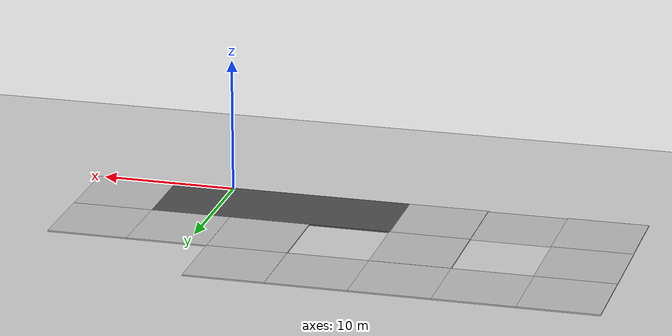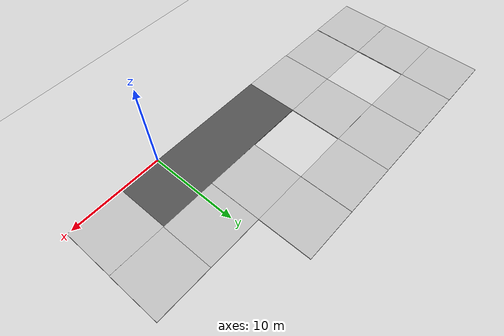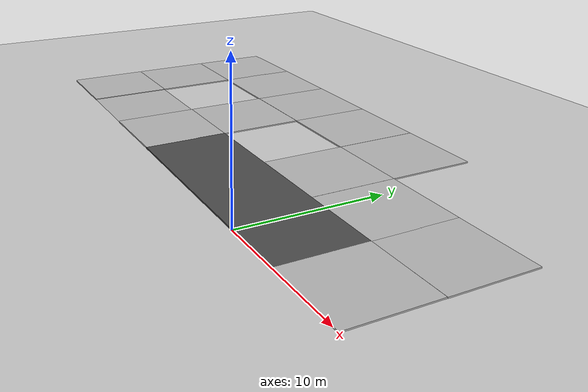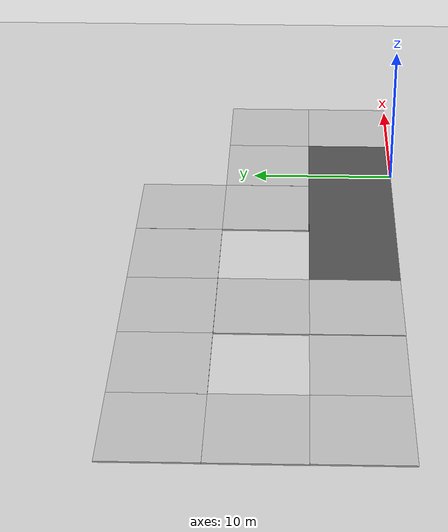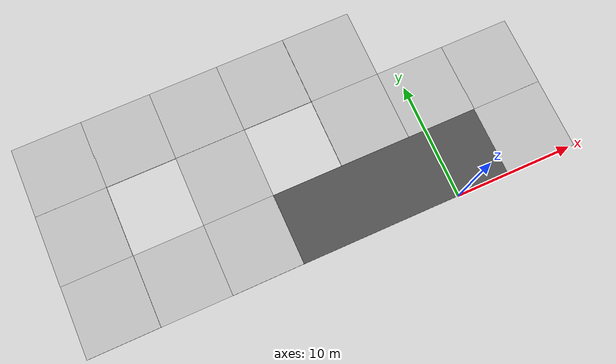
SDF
<sdf version="1.5">
 <world name="default">
  <light name="sun" type="directional">
   <cast_shadows>0</cast_shadows>
   <pose>0 0 10 0 -0 0</pose>
   <diffuse>0.8 0.8 0.8 1</diffuse>
   <specular>0.2 0.2 0.2 1</specular>
   <attenuation>
    <range>1000</range>
    <constant>0.9</constant>
    <linear>0.01</linear>
    <quadratic>0.001</quadratic>
   </attenuation>
   <direction>-0.5 0.1 -0.9</direction>
  </light>
  <model name="ground_plane">
   <static>1</static>
   <link name="link">
    <collision name="collision">
     <geometry><plane><normal>0 0 1</normal><size>100 100</size></plane></geometry>
     <surface><friction><ode><mu>100</mu><mu2>50</mu2></ode></friction></surface>
    </collision>
    <visual name="visual">
     <cast_shadows>0</cast_shadows>
     <geometry><plane><normal>0 0 1</normal><size>100 100</size></plane></geometry>
     <material>
      <script><uri>file://media/materials/scripts/gazebo.material</uri><name>Gazebo/Grey</name></script>
     </material>
    </visual>
   </link>
  </model>
  <physics type="ode">
   <real_time_update_rate>1000</real_time_update_rate>
   <ode>
    <solver>
     <type>quick</type>
     <iters>70</iters>
     <sor>1.3</sor>
     <use_dynamic_moi_rescaling>0</use_dynamic_moi_rescaling>
    </solver>
    <constraints>
     <cfm>0</cfm>
     <erp>0.2</erp>
     <contact_max_correcting_vel>100</contact_max_correcting_vel>
     <contact_surface_layer>0.001</contact_surface_layer>
    </constraints>
   </ode>
   <max_step_size>0.001</max_step_size>
   <real_time_factor>1</real_time_factor>
   <gravity>0 0 -9.8</gravity>
   <magnetic_field>5.5645e-06 2.28758e-05 -4.23884e-05</magnetic_field>
  </physics>
  <scene><ambient>0.4 0.4 0.4 1</ambient><background>0.7 0.7 0.7 1</background><shadows>1</shadows></scene>
  <spherical_coordinates>
   <surface_model>EARTH_WGS84</surface_model>
   <latitude_deg>0</latitude_deg>
   <longitude_deg>0</longitude_deg>
   <elevation>0</elevation>
   <heading_deg>0</heading_deg>
  </spherical_coordinates>
  <model name="road_plane_3">
   <static>1</static>
   <link name="link">
    <collision name="collision"><geometry><box><size>18 6 0.1</size></box></geometry></collision>
    <visual name="visual">
     <cast_shadows>0</cast_shadows>
     <geometry><box><size>18 6 0.1</size></box></geometry>
     <material>
      <script>
       <uri>model://road_plane_3/materials/scripts</uri>
       <uri>model://road_plane_3/materials/textures</uri>
       <name>vrc/road3</name>
      </script>
     </material>
    </visual>
   </link>
   <pose>-4.53361 3 0 0 -0 0</pose>
  </model>
  <model name="road_inter">
   <static>1</static>
   <link name="link">
    <collision name="collision"><geometry><box><size>6 6 0.1</size></box></geometry></collision>
    <visual name="visual">
     <cast_shadows>0</cast_shadows>
     <geometry><box><size>6 6 0.1</size></box></geometry>
     <material>
      <script>
       <uri>model://road_inter/materials/scripts</uri>
       <uri>model://road_inter/materials/textures</uri>
       <name>vrc/inter</name>
      </script>
     </material>
    </visual>
   </link>
   <pose>-16.4785 3 0 0 -0 1.57449</pose>
  </model>
  <model name="road_plane">
   <static>1</static>
   <link name="link">
    <collision name="collision"><geometry><box><size>6 6 0.1</size></box></geometry></collision>
    <visual name="visual">
     <cast_shadows>0</cast_shadows>
     <geometry><mesh><uri>model://road_plane_v2/meshes/road_plane_v2.dae</uri></mesh></geometry>
    </visual>
   </link>
   <pose>-22.4501 3 0 0 -0 0</pose>
  </model>
  <model name="road_plane_0">
   <static>1</static>
   <link name="link">
    <collision name="collision"><geometry><box><size>6 6 0.1</size></box></geometry></collision>
    <visual name="visual">
     <cast_shadows>0</cast_shadows>
     <geometry><box><size>6 6 0.1</size></box></geometry>
     <material>
      <script>
       <uri>model://road_plane/materials/scripts</uri>
       <uri>model://road_plane/materials/textures</uri>
       <name>vrc/plane</name>
      </script>
     </material>
    </visual>
   </link>
   <pose>-16.4942 8.98969 0 0 0 -1.57067</pose>
  </model>
  <model name="road_inter_0">
   <static>1</static>
   <link name="link">
    <collision name="collision"><geometry><box><size>6 6 0.1</size></box></geometry></collision>
    <visual name="visual">
     <cast_shadows>0</cast_shadows>
     <geometry><box><size>6 6 0.1</size></box></geometry>
     <material>
      <script>
       <uri>model://road_inter/materials/scripts</uri>
       <uri>model://road_inter/materials/textures</uri>
       <name>vrc/inter</name>
      </script>
     </material>
    </visual>
   </link>
   <pose>-16.4966 15 0 0 0 -1.57121</pose>
  </model>
  <model name="road_plane_1">
   <static>1</static>
   <link name="link">
    <collision name="collision"><geometry><box><size>6 6 0.1</size></box></geometry></collision>
    <visual name="visual">
     <cast_shadows>0</cast_shadows>
     <geometry><box><size>6 6 0.1</size></box></geometry>
     <material>
      <script>
       <uri>model://road_plane/materials/scripts</uri>
       <uri>model://road_plane/materials/textures</uri>
       <name>vrc/plane</name>
      </script>
     </material>
    </visual>
   </link>
   <pose>-22.4897 14.999 0 0 -0 0</pose>
  </model>
  <model name="road_plane_2">
   <static>1</static>
   <link name="link">
    <collision name="collision"><geometry><box><size>6 6 0.1</size></box></geometry></collision>
    <visual name="visual">
     <cast_shadows>0</cast_shadows>
     <geometry><box><size>6 6 0.1</size></box></geometry>
     <material>
      <script>
       <uri>model://road_plane/materials/scripts</uri>
       <uri>model://road_plane/materials/textures</uri>
       <name>vrc/plane</name>
      </script>
     </material>
    </visual>
   </link>
   <pose>-10.5068 15 0 0 -0 0</pose>
  </model>
  <model name="road_diag">
   <static>1</static>
   <link name="link">
    <collision name="collision"><geometry><box><size>6 6 0.1</size></box></geometry></collision>
    <visual name="visual">
     <cast_shadows>0</cast_shadows>
     <geometry><box><size>6 6 0.1</size></box></geometry>
     <material>
      <script>
       <uri>model://road_diag/materials/scripts</uri>
       <uri>model://road_diag/materials/textures</uri>
       <name>vrc/diag</name>
      </script>
     </material>
    </visual>
   </link>
   <pose>7.46142 3 0 0 -0 0</pose>
  </model>
  <model name="road_diag_0">
   <static>1</static>
   <link name="link">
    <collision name="collision"><geometry><box><size>6 6 0.1</size></box></geometry></collision>
    <visual name="visual">
     <cast_shadows>0</cast_shadows>
     <geometry><box><size>6 6 0.1</size></box></geometry>
     <material>
      <script>
       <uri>model://road_diag/materials/scripts</uri>
       <uri>model://road_diag/materials/textures</uri>
       <name>vrc/diag</name>
      </script>
     </material>
    </visual>
   </link>
   <pose>7.47392 9 0 0 -0 1.57232</pose>
  </model>
  <model name="road_plane_4">
   <static>1</static>
   <link name="link">
    <collision name="collision"><geometry><box><size>6 6 0.1</size></box></geometry></collision>
    <visual name="visual">
     <cast_shadows>0</cast_shadows>
     <geometry><box><size>6 6 0.1</size></box></geometry>
     <material>
      <script>
       <uri>model://road_plane/materials/scripts</uri>
       <uri>model://road_plane/materials/textures</uri>
       <name>vrc/plane</name>
      </script>
     </material>
    </visual>
   </link>
   <pose>1.50532 9 0 0 -0 0</pose>
  </model>
  <model name="road_diag_1">
   <static>1</static>
   <link name="link">
    <collision name="collision"><geometry><box><size>6 6 0.1</size></box></geometry></collision>
    <visual name="visual">
     <cast_shadows>0</cast_shadows>
     <geometry><box><size>6 6 0.1</size></box></geometry>
     <material>
      <script>
       <uri>model://road_diag/materials/scripts</uri>
       <uri>model://road_diag/materials/textures</uri>
       <name>vrc/diag</name>
      </script>
     </material>
    </visual>
   </link>
   <pose>-4.49851 9.0036 0 0 0 -1.57191</pose>
  </model>
  <model name="road_diag_2">
   <static>1</static>
   <link name="link">
    <collision name="collision"><geometry><box><size>6 6 0.1</size></box></geometry></collision>
    <visual name="visual">
     <cast_shadows>0</cast_shadows>
     <geometry><box><size>6 6 0.1</size></box></geometry>
     <material>
      <script>
       <uri>model://road_diag/materials/scripts</uri>
       <uri>model://road_diag/materials/textures</uri>
       <name>vrc/diag</name>
      </script>
     </material>
    </visual>
   </link>
   <pose>-4.49563 14.9977 0 0 -0 1.57081</pose>
  </model>
  <model name="road_diag_3">
   <static>1</static>
   <link name="link">
    <collision name="collision"><geometry><box><size>6 6 0.1</size></box></geometry></collision>
    <visual name="visual">
     <cast_shadows>0</cast_shadows>
     <geometry><box><size>6 6 0.1</size></box></geometry>
     <material>
      <script>
       <uri>model://road_diag/materials/scripts</uri>
       <uri>model://road_diag/materials/textures</uri>
       <name>vrc/diag</name>
      </script>
     </material>
    </visual>
   </link>
   <pose>-28.4361 15 0 0 0 -3.14038</pose>
  </model>
  <model name="road_diag_4">
   <static>1</static>
   <link name="link">
    <collision name="collision"><geometry><box><size>6 6 0.1</size></box></geometry></collision>
    <visual name="visual">
     <cast_shadows>0</cast_shadows>
     <geometry><box><size>6 6 0.1</size></box></geometry>
     <material>
      <script>
       <uri>model://road_diag/materials/scripts</uri>
       <uri>model://road_diag/materials/textures</uri>
       <name>vrc/diag</name>
      </script>
     </material>
    </visual>
   </link>
   <pose>-28.4086 3 0 0 0 -1.56894</pose>
  </model>
  <model name="road_plane_5">
   <static>1</static>
   <link name="link">
    <collision name="collision"><geometry><box><size>6 6 0.1</size></box></geometry></collision>
    <visual name="visual">
     <cast_shadows>0</cast_shadows>
     <geometry><box><size>6 6 0.1</size></box></geometry>
     <material>
      <script>
       <uri>model://road_plane/materials/scripts</uri>
       <uri>model://road_plane/materials/textures</uri>
       <name>vrc/plane</name>
      </script>
     </material>
    </visual>
   </link>
   <pose>-28.4368 9 0 0 0 -1.56904</pose>
  </model>
  <audio><device>default</device></audio>
 </world>
</sdf>
